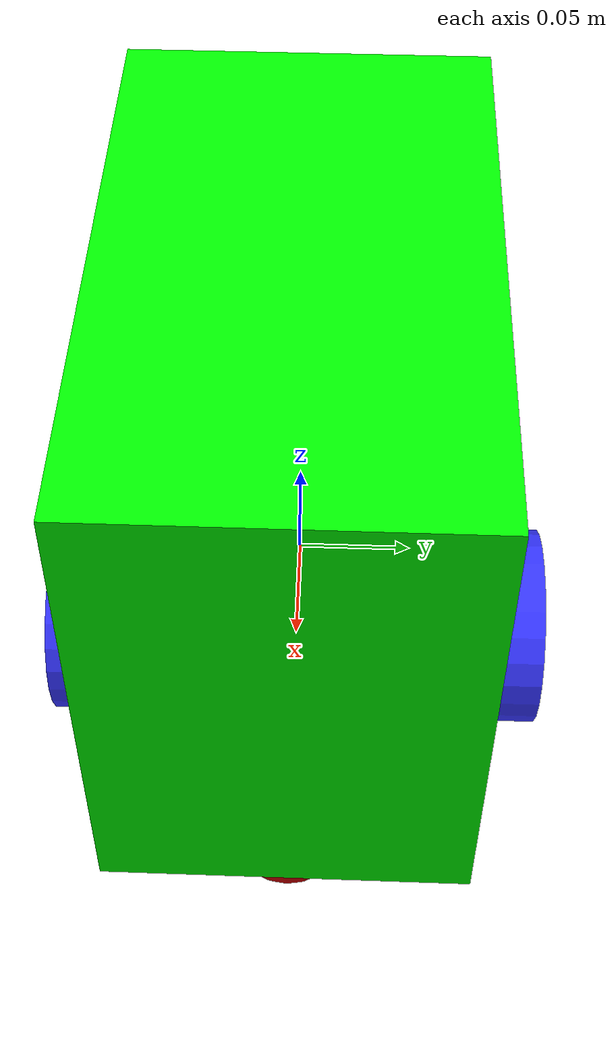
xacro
<?xml version="1.0"?>
<robot xmlns:xacro="http://www.ros.org/wiki/xacro" >
    <xacro:include filename="inertial_macros.xacro" />
    <material name ="white">
        <color rgba ="1 1 1 1" />
    </material>

    <material name ="orange">
        <color rgba ="1 0.3 0.1 1" />
    </material>

    <material name ="blue">
        <color rgba ="0.2 0.2 1 1" />
    </material>

    <material name ="black">
        <color rgba ="0 0 0 1" />
    </material>

    <material name="red">
        <color rgba="0.8 0.0 0.0 1.0"/>
    </material>

    <material name ="green">
            <color rgba="0.0 1.0 0.0 1.0"/>
    </material>

    <link name="base_link">

    </link>

    <joint name="base_footprint_joint" type="fixed">
        <parent link="base_link" />
        <child link="base_footprint"  />
        <origin xyz ="0 0 0" rpy="0 0 0" />
    </joint>

   <link name="base_footprint">

    </link>

    <joint name="chasssis_joint" type="fixed">
        <parent link="base_link" />
        <child link="chassis"  />
        <origin xyz ="-0.08 0 0" />
    </joint>

    <link name="chassis">

        <visual>
            <origin xyz = "0.125 0 0.105"  />
            <geometry>
                <box size="0.25 0.145 0.21" />

            </geometry>
                <material name="green" />

        </visual>

        <collision>
            <origin xyz = "0.125 0 0.105"  />
            <geometry>
                <box size="0.25 0.145 0.21" />
            </geometry>

        </collision>

        <xacro:inertial_box mass="0.5" x="0.25" y="0.145" z="0.21">
            <origin xyz="0.125 0 0.105" rpy="0 0 0"/>
        </xacro:inertial_box>

    </link>

    <gazebo reference="chassis">
        <material>Gazebo/Green</material>
    </gazebo>

    <joint name="left_wheel_joint" type="continuous">

        <parent link="base_link"/>
        <child link="left_wheel"/>
        <origin xyz="0.0425 0.085 0" rpy="-${pi/2} 0 0" />
        <axis xyz ="0 0 1"/>

    </joint>

    <link name="left_wheel">

        <visual>
            <geometry>
                <cylinder radius="0.0425"  length="0.04"/>
            </geometry>

            <material name="blue" />
        </visual>

        <collision>
            <geometry>
                <cylinder radius="0.0425"  length="0.04"/>
            </geometry>
        </collision>

        <xacro:inertial_cylinder mass="0.1" length="0.04" radius="0.0425">
            <origin xyz="0 0 0" rpy="0 0 0"/>
        </xacro:inertial_cylinder>

    </link>

    <gazebo reference="left_wheel">
        <material>Gazebo/Blue</material>
    </gazebo>

    <joint name="right_wheel_joint" type="continuous">

        <parent link="base_link"/>
        <child link="right_wheel"/>
        <origin xyz="0.0425 -0.085 0" rpy="${pi/2} 0 0" />
        <axis xyz ="0 0 -1"/>

    </joint>

    <link name="right_wheel">

        <visual>
            <geometry>
                <cylinder radius="0.0425"  length="0.04"/>
            </geometry>

            <material name="blue" />
        </visual>

        <collision>
            <geometry>
                <cylinder radius="0.0425"  length="0.04"/>
            </geometry>
        </collision>

        <xacro:inertial_cylinder mass="0.1" length="0.04" radius="0.0425">
            <origin xyz="0 0 0" rpy="0 0 0"/>
        </xacro:inertial_cylinder>

    </link>

    <gazebo reference="right_wheel">
        <material>Gazebo/Blue</material>
    </gazebo>

    <joint name="front_caster_wheel_joint"  type="fixed">

        <parent link="chassis" />
        <child link ="front_caster_wheel" />
        <origin xyz ="0.215 0 -0.018"/>
    </joint>

    <link name="front_caster_wheel">
        <visual>
            <geometry>
                <sphere radius="0.025"/>
            </geometry>
            <material name="red"/>
        </visual>

        <collision>
            <geometry>
                <sphere radius="0.025"/>
            </geometry>
        </collision>

        <xacro:inertial_sphere mass="0.1" radius="0.025">
            <origin xyz="0 0 0" rpy="0 0 0"/>
        </xacro:inertial_sphere>

    </link>

    <gazebo reference="front_caster_wheel">
        <material>Gazebo/Red</material>
        <mu1 value="0.001"/>
        <mu2 value="0.001"/>
    </gazebo>

    <joint name="back_caster_wheel_joint"  type="fixed">

        <parent link="chassis" />
        <child link ="back_caster_wheel" />
        <origin xyz ="0.03 0 -0.015"/>
    </joint>

    <link name="back_caster_wheel">
        <visual>
            <geometry>
                <sphere radius="0.025"/>
            </geometry>
            <material name="red"/>
        </visual>

        <collision>
            <geometry>
                <sphere radius="0.025"/>
            </geometry>
        </collision>

        <xacro:inertial_sphere mass="0.1" radius="0.025">
            <origin xyz="0 0 0" rpy="0 0 0"/>
        </xacro:inertial_sphere>

    </link>

    <gazebo reference="back_caster_wheel">
        <material>Gazebo/Red</material>
        <mu1 value="0.001"/>
        <mu2 value="0.001"/>
    </gazebo>

</robot>
